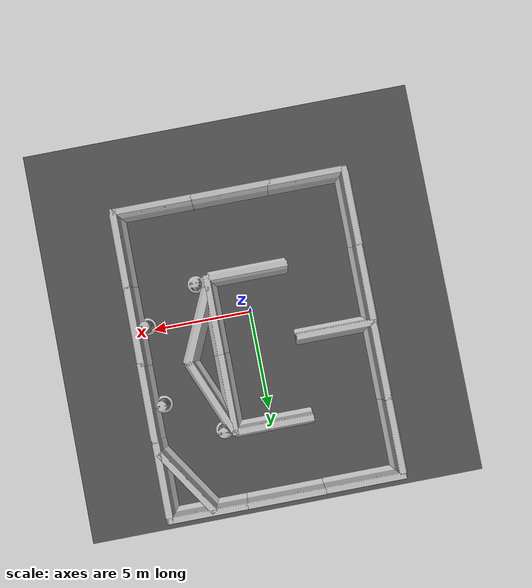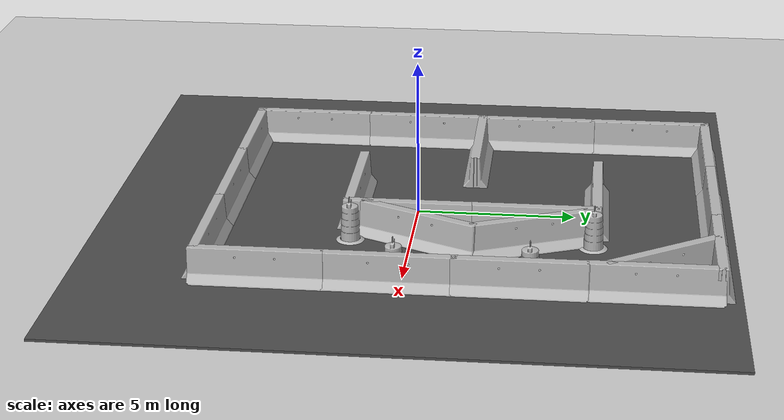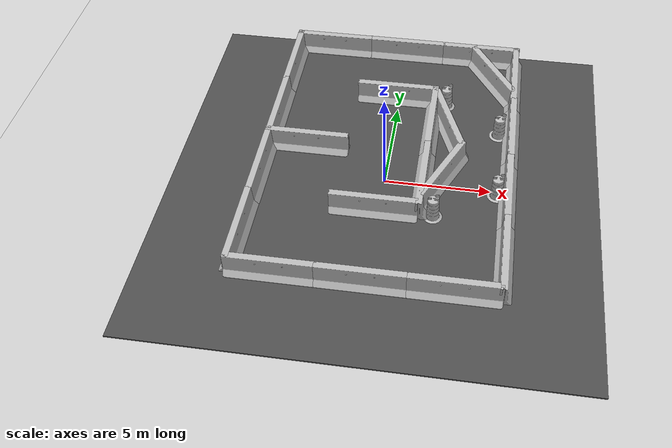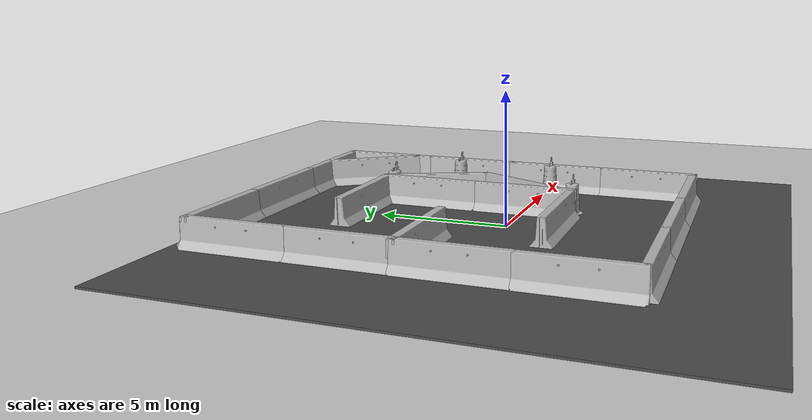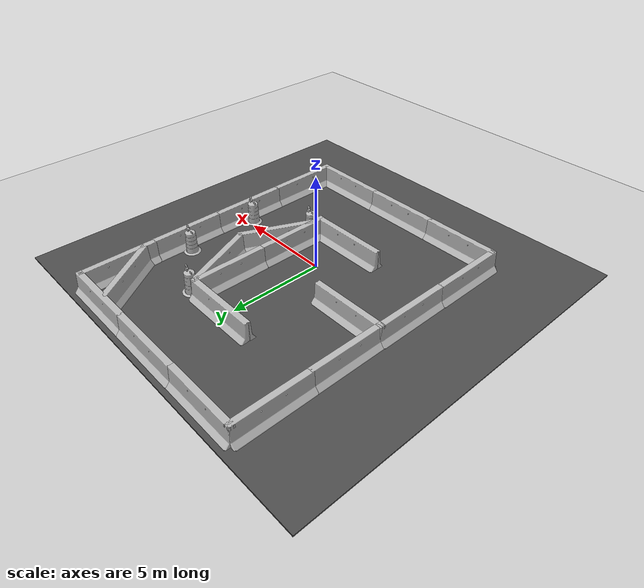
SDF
<sdf version="1.6">
 <world name="default">
  <light name="sun" type="directional">
   <pose>0 0 10 0 -0 0</pose>
   <diffuse>0.8 0.8 0.8 1</diffuse>
   <specular>0.1 0.1 0.1 1</specular>
   <attenuation>
    <range>1000</range>
    <constant>0.9</constant>
    <linear>0.01</linear>
    <quadratic>0.001</quadratic>
   </attenuation>
   <direction>-0.5 0.5 -1</direction>
  </light>
  <model name="ground_plane">
   <static>1</static>
   <link name="link">
    <collision name="collision">
     <geometry><plane><normal>0 0 1</normal><size>100 100</size></plane></geometry>
     <surface><friction><ode><mu>100</mu><mu2>50</mu2></ode></friction></surface>
    </collision>
    <visual name="visual">
     <cast_shadows>0</cast_shadows>
     <geometry><plane><normal>0 0 1</normal><size>100 100</size></plane></geometry>
     <material>
      <script><uri>file://media/materials/scripts/gazebo.material</uri><name>Gazebo/Grey</name></script>
     </material>
    </visual>
   </link>
  </model>
  <gravity>0 0 -9.8</gravity>
  <magnetic_field>6e-06 2.3e-05 -4.2e-05</magnetic_field>
  <atmosphere type="adiabatic"/>
  <physics name="default_physics" default="0" type="ode">
   <max_step_size>0.001</max_step_size>
   <real_time_factor>1</real_time_factor>
   <real_time_update_rate>1000</real_time_update_rate>
  </physics>
  <scene><ambient>0.4 0.4 0.4 1</ambient><background>0.7 0.7 0.7 1</background><shadows>1</shadows></scene>
  <spherical_coordinates>
   <surface_model>EARTH_WGS84</surface_model>
   <latitude_deg>0</latitude_deg>
   <longitude_deg>0</longitude_deg>
   <elevation>0</elevation>
   <heading_deg>0</heading_deg>
  </spherical_coordinates>
  <model name="asphalt_plane">
   <static>1</static>
   <link name="link">
    <collision name="collision"><geometry><box><size>20 20 0.1</size></box></geometry></collision>
    <visual name="visual">
     <cast_shadows>0</cast_shadows>
     <geometry><box><size>20 20 0.1</size></box></geometry>
     <material>
      <script>
       <uri>model://asphalt_plane/materials/scripts</uri>
       <uri>model://asphalt_plane/materials/textures</uri>
       <name>vrc/asphalt</name>
      </script>
     </material>
    </visual>
   </link>
   <pose>-0.024426 0.014227 0 0 -0 0</pose>
  </model>
  <model name="jersey_barrier_1">
   <static>1</static>
   <link name="link">
    <visual name="visual">
     <geometry>
      <mesh><uri>model://jersey_barrier/meshes/jersey_barrier.dae</uri><scale>1 1 1</scale></mesh>
     </geometry>
    </visual>
    <collision name="upright">
     <pose>0 0 0.5715 0 -0 0</pose>
     <geometry><box><size>4.06542 0.3063 1.143</size></box></geometry>
    </collision>
    <collision name="base">
     <pose>0 0 0.032258 0 -0 0</pose>
     <geometry><box><size>4.06542 0.8107 0.064516</size></box></geometry>
    </collision>
    <collision name="base2">
     <pose>0 0 0.1 0 -0 0</pose>
     <geometry><box><size>4.06542 0.65 0.1</size></box></geometry>
    </collision>
    <collision name="base3">
     <pose>0 0 0.2 0 -0 0</pose>
     <geometry><box><size>4.06542 0.5 0.1</size></box></geometry>
    </collision>
    <collision name="left-angle">
     <pose>0 -0.224 0.2401 0.9 -0 0</pose>
     <geometry><box><size>4.06542 0.5 0.064516</size></box></geometry>
    </collision>
    <collision name="right-angle">
     <pose>0 0.224 0.2401 -0.9 0 0</pose>
     <geometry><box><size>4.06542 0.5 0.064516</size></box></geometry>
    </collision>
   </link>
   <pose>-4.01025 1.70091 0 0 -0 0</pose>
  </model>
  <model name="jersey_barrier_1_clone_clone">
   <static>1</static>
   <link name="link">
    <visual name="visual">
     <geometry>
      <mesh><uri>model://jersey_barrier/meshes/jersey_barrier.dae</uri><scale>1 1 1</scale></mesh>
     </geometry>
    </visual>
    <collision name="upright">
     <pose>0 0 0.5715 0 -0 0</pose>
     <geometry><box><size>4.06542 0.3063 1.143</size></box></geometry>
    </collision>
    <collision name="base">
     <pose>0 0 0.032258 0 -0 0</pose>
     <geometry><box><size>4.06542 0.8107 0.064516</size></box></geometry>
    </collision>
    <collision name="base2">
     <pose>0 0 0.1 0 -0 0</pose>
     <geometry><box><size>4.06542 0.65 0.1</size></box></geometry>
    </collision>
    <collision name="base3">
     <pose>0 0 0.2 0 -0 0</pose>
     <geometry><box><size>4.06542 0.5 0.1</size></box></geometry>
    </collision>
    <collision name="left-angle">
     <pose>0 -0.224 0.2401 0.9 -0 0</pose>
     <geometry><box><size>4.06542 0.5 0.064516</size></box></geometry>
    </collision>
    <collision name="right-angle">
     <pose>0 0.224 0.2401 -0.9 0 0</pose>
     <geometry><box><size>4.06542 0.5 0.064516</size></box></geometry>
    </collision>
   </link>
   <pose>-5.88174 -0.237108 0 0 0 -1.57178</pose>
  </model>
  <model name="jersey_barrier_1_clone_clone_0">
   <static>1</static>
   <link name="link">
    <visual name="visual">
     <geometry>
      <mesh><uri>model://jersey_barrier/meshes/jersey_barrier.dae</uri><scale>1 1 1</scale></mesh>
     </geometry>
    </visual>
    <collision name="upright">
     <pose>0 0 0.5715 0 -0 0</pose>
     <geometry><box><size>4.06542 0.3063 1.143</size></box></geometry>
    </collision>
    <collision name="base">
     <pose>0 0 0.032258 0 -0 0</pose>
     <geometry><box><size>4.06542 0.8107 0.064516</size></box></geometry>
    </collision>
    <collision name="base2">
     <pose>0 0 0.1 0 -0 0</pose>
     <geometry><box><size>4.06542 0.65 0.1</size></box></geometry>
    </collision>
    <collision name="base3">
     <pose>0 0 0.2 0 -0 0</pose>
     <geometry><box><size>4.06542 0.5 0.1</size></box></geometry>
    </collision>
    <collision name="left-angle">
     <pose>0 -0.224 0.2401 0.9 -0 0</pose>
     <geometry><box><size>4.06542 0.5 0.064516</size></box></geometry>
    </collision>
    <collision name="right-angle">
     <pose>0 0.224 0.2401 -0.9 0 0</pose>
     <geometry><box><size>4.06542 0.5 0.064516</size></box></geometry>
    </collision>
   </link>
   <pose>-5.90449 -4.19754 0 0 0 -1.57178</pose>
  </model>
  <model name="jersey_barrier_1_clone">
   <static>1</static>
   <link name="link">
    <visual name="visual">
     <geometry>
      <mesh><uri>model://jersey_barrier/meshes/jersey_barrier.dae</uri><scale>1 1 1</scale></mesh>
     </geometry>
    </visual>
    <collision name="upright">
     <pose>0 0 0.5715 0 -0 0</pose>
     <geometry><box><size>4.06542 0.3063 1.143</size></box></geometry>
    </collision>
    <collision name="base">
     <pose>0 0 0.032258 0 -0 0</pose>
     <geometry><box><size>4.06542 0.8107 0.064516</size></box></geometry>
    </collision>
    <collision name="base2">
     <pose>0 0 0.1 0 -0 0</pose>
     <geometry><box><size>4.06542 0.65 0.1</size></box></geometry>
    </collision>
    <collision name="base3">
     <pose>0 0 0.2 0 -0 0</pose>
     <geometry><box><size>4.06542 0.5 0.1</size></box></geometry>
    </collision>
    <collision name="left-angle">
     <pose>0 -0.224 0.2401 0.9 -0 0</pose>
     <geometry><box><size>4.06542 0.5 0.064516</size></box></geometry>
    </collision>
    <collision name="right-angle">
     <pose>0 0.224 0.2401 -0.9 0 0</pose>
     <geometry><box><size>4.06542 0.5 0.064516</size></box></geometry>
    </collision>
   </link>
   <pose>-4.02597 -6.08351 0 0 -0 0</pose>
  </model>
  <model name="jersey_barrier_1_clone_clone_clone">
   <static>1</static>
   <link name="link">
    <visual name="visual">
     <geometry>
      <mesh><uri>model://jersey_barrier/meshes/jersey_barrier.dae</uri><scale>1 1 1</scale></mesh>
     </geometry>
    </visual>
    <collision name="upright">
     <pose>0 0 0.5715 0 -0 0</pose>
     <geometry><box><size>4.06542 0.3063 1.143</size></box></geometry>
    </collision>
    <collision name="base">
     <pose>0 0 0.032258 0 -0 0</pose>
     <geometry><box><size>4.06542 0.8107 0.064516</size></box></geometry>
    </collision>
    <collision name="base2">
     <pose>0 0 0.1 0 -0 0</pose>
     <geometry><box><size>4.06542 0.65 0.1</size></box></geometry>
    </collision>
    <collision name="base3">
     <pose>0 0 0.2 0 -0 0</pose>
     <geometry><box><size>4.06542 0.5 0.1</size></box></geometry>
    </collision>
    <collision name="left-angle">
     <pose>0 -0.224 0.2401 0.9 -0 0</pose>
     <geometry><box><size>4.06542 0.5 0.064516</size></box></geometry>
    </collision>
    <collision name="right-angle">
     <pose>0 0.224 0.2401 -0.9 0 0</pose>
     <geometry><box><size>4.06542 0.5 0.064516</size></box></geometry>
    </collision>
   </link>
   <pose>-5.84903 3.57159 0 0 0 -1.57178</pose>
  </model>
  <model name="jersey_barrier_1_clone_clone_clone_0">
   <static>1</static>
   <link name="link">
    <visual name="visual">
     <geometry>
      <mesh><uri>model://jersey_barrier/meshes/jersey_barrier.dae</uri><scale>1 1 1</scale></mesh>
     </geometry>
    </visual>
    <collision name="upright">
     <pose>0 0 0.5715 0 -0 0</pose>
     <geometry><box><size>4.06542 0.3063 1.143</size></box></geometry>
    </collision>
    <collision name="base">
     <pose>0 0 0.032258 0 -0 0</pose>
     <geometry><box><size>4.06542 0.8107 0.064516</size></box></geometry>
    </collision>
    <collision name="base2">
     <pose>0 0 0.1 0 -0 0</pose>
     <geometry><box><size>4.06542 0.65 0.1</size></box></geometry>
    </collision>
    <collision name="base3">
     <pose>0 0 0.2 0 -0 0</pose>
     <geometry><box><size>4.06542 0.5 0.1</size></box></geometry>
    </collision>
    <collision name="left-angle">
     <pose>0 -0.224 0.2401 0.9 -0 0</pose>
     <geometry><box><size>4.06542 0.5 0.064516</size></box></geometry>
    </collision>
    <collision name="right-angle">
     <pose>0 0.224 0.2401 -0.9 0 0</pose>
     <geometry><box><size>4.06542 0.5 0.064516</size></box></geometry>
    </collision>
   </link>
   <pose>-5.85116 7.4803 0 0 0 -1.57178</pose>
  </model>
  <model name="jersey_barrier_1_clone_clone_1">
   <static>1</static>
   <link name="link">
    <visual name="visual">
     <geometry>
      <mesh><uri>model://jersey_barrier/meshes/jersey_barrier.dae</uri><scale>1 1 1</scale></mesh>
     </geometry>
    </visual>
    <collision name="upright">
     <pose>0 0 0.5715 0 -0 0</pose>
     <geometry><box><size>4.06542 0.3063 1.143</size></box></geometry>
    </collision>
    <collision name="base">
     <pose>0 0 0.032258 0 -0 0</pose>
     <geometry><box><size>4.06542 0.8107 0.064516</size></box></geometry>
    </collision>
    <collision name="base2">
     <pose>0 0 0.1 0 -0 0</pose>
     <geometry><box><size>4.06542 0.65 0.1</size></box></geometry>
    </collision>
    <collision name="base3">
     <pose>0 0 0.2 0 -0 0</pose>
     <geometry><box><size>4.06542 0.5 0.1</size></box></geometry>
    </collision>
    <collision name="left-angle">
     <pose>0 -0.224 0.2401 0.9 -0 0</pose>
     <geometry><box><size>4.06542 0.5 0.064516</size></box></geometry>
    </collision>
    <collision name="right-angle">
     <pose>0 0.224 0.2401 -0.9 0 0</pose>
     <geometry><box><size>4.06542 0.5 0.064516</size></box></geometry>
    </collision>
   </link>
   <pose>-0.142707 -6.08411 0 0 -0 0</pose>
  </model>
  <model name="jersey_barrier_1_clone_clone_2">
   <static>1</static>
   <link name="link">
    <visual name="visual">
     <geometry>
      <mesh><uri>model://jersey_barrier/meshes/jersey_barrier.dae</uri><scale>1 1 1</scale></mesh>
     </geometry>
    </visual>
    <collision name="upright">
     <pose>0 0 0.5715 0 -0 0</pose>
     <geometry><box><size>4.06542 0.3063 1.143</size></box></geometry>
    </collision>
    <collision name="base">
     <pose>0 0 0.032258 0 -0 0</pose>
     <geometry><box><size>4.06542 0.8107 0.064516</size></box></geometry>
    </collision>
    <collision name="base2">
     <pose>0 0 0.1 0 -0 0</pose>
     <geometry><box><size>4.06542 0.65 0.1</size></box></geometry>
    </collision>
    <collision name="base3">
     <pose>0 0 0.2 0 -0 0</pose>
     <geometry><box><size>4.06542 0.5 0.1</size></box></geometry>
    </collision>
    <collision name="left-angle">
     <pose>0 -0.224 0.2401 0.9 -0 0</pose>
     <geometry><box><size>4.06542 0.5 0.064516</size></box></geometry>
    </collision>
    <collision name="right-angle">
     <pose>0 0.224 0.2401 -0.9 0 0</pose>
     <geometry><box><size>4.06542 0.5 0.064516</size></box></geometry>
    </collision>
   </link>
   <pose>3.79624 -6.08803 0 0 -0 0</pose>
  </model>
  <model name="jersey_barrier_1_clone_clone_3">
   <static>1</static>
   <link name="link">
    <visual name="visual">
     <geometry>
      <mesh><uri>model://jersey_barrier/meshes/jersey_barrier.dae</uri><scale>1 1 1</scale></mesh>
     </geometry>
    </visual>
    <collision name="upright">
     <pose>0 0 0.5715 0 -0 0</pose>
     <geometry><box><size>4.06542 0.3063 1.143</size></box></geometry>
    </collision>
    <collision name="base">
     <pose>0 0 0.032258 0 -0 0</pose>
     <geometry><box><size>4.06542 0.8107 0.064516</size></box></geometry>
    </collision>
    <collision name="base2">
     <pose>0 0 0.1 0 -0 0</pose>
     <geometry><box><size>4.06542 0.65 0.1</size></box></geometry>
    </collision>
    <collision name="base3">
     <pose>0 0 0.2 0 -0 0</pose>
     <geometry><box><size>4.06542 0.5 0.1</size></box></geometry>
    </collision>
    <collision name="left-angle">
     <pose>0 -0.224 0.2401 0.9 -0 0</pose>
     <geometry><box><size>4.06542 0.5 0.064516</size></box></geometry>
    </collision>
    <collision name="right-angle">
     <pose>0 0.224 0.2401 -0.9 0 0</pose>
     <geometry><box><size>4.06542 0.5 0.064516</size></box></geometry>
    </collision>
   </link>
   <pose>-3.98039 9.35157 0 0 -0 0</pose>
  </model>
  <model name="jersey_barrier_1_clone_clone_4">
   <static>1</static>
   <link name="link">
    <visual name="visual">
     <geometry>
      <mesh><uri>model://jersey_barrier/meshes/jersey_barrier.dae</uri><scale>1 1 1</scale></mesh>
     </geometry>
    </visual>
    <collision name="upright">
     <pose>0 0 0.5715 0 -0 0</pose>
     <geometry><box><size>4.06542 0.3063 1.143</size></box></geometry>
    </collision>
    <collision name="base">
     <pose>0 0 0.032258 0 -0 0</pose>
     <geometry><box><size>4.06542 0.8107 0.064516</size></box></geometry>
    </collision>
    <collision name="base2">
     <pose>0 0 0.1 0 -0 0</pose>
     <geometry><box><size>4.06542 0.65 0.1</size></box></geometry>
    </collision>
    <collision name="base3">
     <pose>0 0 0.2 0 -0 0</pose>
     <geometry><box><size>4.06542 0.5 0.1</size></box></geometry>
    </collision>
    <collision name="left-angle">
     <pose>0 -0.224 0.2401 0.9 -0 0</pose>
     <geometry><box><size>4.06542 0.5 0.064516</size></box></geometry>
    </collision>
    <collision name="right-angle">
     <pose>0 0.224 0.2401 -0.9 0 0</pose>
     <geometry><box><size>4.06542 0.5 0.064516</size></box></geometry>
    </collision>
   </link>
   <pose>-0.013487 9.36235 0 0 -0 0</pose>
  </model>
  <model name="jersey_barrier_1_clone_clone_5">
   <static>1</static>
   <link name="link">
    <visual name="visual">
     <geometry>
      <mesh><uri>model://jersey_barrier/meshes/jersey_barrier.dae</uri><scale>1 1 1</scale></mesh>
     </geometry>
    </visual>
    <collision name="upright">
     <pose>0 0 0.5715 0 -0 0</pose>
     <geometry><box><size>4.06542 0.3063 1.143</size></box></geometry>
    </collision>
    <collision name="base">
     <pose>0 0 0.032258 0 -0 0</pose>
     <geometry><box><size>4.06542 0.8107 0.064516</size></box></geometry>
    </collision>
    <collision name="base2">
     <pose>0 0 0.1 0 -0 0</pose>
     <geometry><box><size>4.06542 0.65 0.1</size></box></geometry>
    </collision>
    <collision name="base3">
     <pose>0 0 0.2 0 -0 0</pose>
     <geometry><box><size>4.06542 0.5 0.1</size></box></geometry>
    </collision>
    <collision name="left-angle">
     <pose>0 -0.224 0.2401 0.9 -0 0</pose>
     <geometry><box><size>4.06542 0.5 0.064516</size></box></geometry>
    </collision>
    <collision name="right-angle">
     <pose>0 0.224 0.2401 -0.9 0 0</pose>
     <geometry><box><size>4.06542 0.5 0.064516</size></box></geometry>
    </collision>
   </link>
   <pose>3.91234 9.36012 0 0 -0 0</pose>
  </model>
  <model name="jersey_barrier_1_clone_clone_clone_clone">
   <static>1</static>
   <link name="link">
    <visual name="visual">
     <geometry>
      <mesh><uri>model://jersey_barrier/meshes/jersey_barrier.dae</uri><scale>1 1 1</scale></mesh>
     </geometry>
    </visual>
    <collision name="upright">
     <pose>0 0 0.5715 0 -0 0</pose>
     <geometry><box><size>4.06542 0.3063 1.143</size></box></geometry>
    </collision>
    <collision name="base">
     <pose>0 0 0.032258 0 -0 0</pose>
     <geometry><box><size>4.06542 0.8107 0.064516</size></box></geometry>
    </collision>
    <collision name="base2">
     <pose>0 0 0.1 0 -0 0</pose>
     <geometry><box><size>4.06542 0.65 0.1</size></box></geometry>
    </collision>
    <collision name="base3">
     <pose>0 0 0.2 0 -0 0</pose>
     <geometry><box><size>4.06542 0.5 0.1</size></box></geometry>
    </collision>
    <collision name="left-angle">
     <pose>0 -0.224 0.2401 0.9 -0 0</pose>
     <geometry><box><size>4.06542 0.5 0.064516</size></box></geometry>
    </collision>
    <collision name="right-angle">
     <pose>0 0.224 0.2401 -0.9 0 0</pose>
     <geometry><box><size>4.06542 0.5 0.064516</size></box></geometry>
    </collision>
   </link>
   <pose>5.76879 7.46216 0 0 0 -1.57178</pose>
  </model>
  <model name="jersey_barrier_1_clone_clone_clone_clone_0">
   <static>1</static>
   <link name="link">
    <visual name="visual">
     <geometry>
      <mesh><uri>model://jersey_barrier/meshes/jersey_barrier.dae</uri><scale>1 1 1</scale></mesh>
     </geometry>
    </visual>
    <collision name="upright">
     <pose>0 0 0.5715 0 -0 0</pose>
     <geometry><box><size>4.06542 0.3063 1.143</size></box></geometry>
    </collision>
    <collision name="base">
     <pose>0 0 0.032258 0 -0 0</pose>
     <geometry><box><size>4.06542 0.8107 0.064516</size></box></geometry>
    </collision>
    <collision name="base2">
     <pose>0 0 0.1 0 -0 0</pose>
     <geometry><box><size>4.06542 0.65 0.1</size></box></geometry>
    </collision>
    <collision name="base3">
     <pose>0 0 0.2 0 -0 0</pose>
     <geometry><box><size>4.06542 0.5 0.1</size></box></geometry>
    </collision>
    <collision name="left-angle">
     <pose>0 -0.224 0.2401 0.9 -0 0</pose>
     <geometry><box><size>4.06542 0.5 0.064516</size></box></geometry>
    </collision>
    <collision name="right-angle">
     <pose>0 0.224 0.2401 -0.9 0 0</pose>
     <geometry><box><size>4.06542 0.5 0.064516</size></box></geometry>
    </collision>
   </link>
   <pose>5.78124 -4.23478 0 0 0 -1.57178</pose>
  </model>
  <model name="jersey_barrier_1_clone_clone_clone_clone_1">
   <static>1</static>
   <link name="link">
    <visual name="visual">
     <geometry>
      <mesh><uri>model://jersey_barrier/meshes/jersey_barrier.dae</uri><scale>1 1 1</scale></mesh>
     </geometry>
    </visual>
    <collision name="upright">
     <pose>0 0 0.5715 0 -0 0</pose>
     <geometry><box><size>4.06542 0.3063 1.143</size></box></geometry>
    </collision>
    <collision name="base">
     <pose>0 0 0.032258 0 -0 0</pose>
     <geometry><box><size>4.06542 0.8107 0.064516</size></box></geometry>
    </collision>
    <collision name="base2">
     <pose>0 0 0.1 0 -0 0</pose>
     <geometry><box><size>4.06542 0.65 0.1</size></box></geometry>
    </collision>
    <collision name="base3">
     <pose>0 0 0.2 0 -0 0</pose>
     <geometry><box><size>4.06542 0.5 0.1</size></box></geometry>
    </collision>
    <collision name="left-angle">
     <pose>0 -0.224 0.2401 0.9 -0 0</pose>
     <geometry><box><size>4.06542 0.5 0.064516</size></box></geometry>
    </collision>
    <collision name="right-angle">
     <pose>0 0.224 0.2401 -0.9 0 0</pose>
     <geometry><box><size>4.06542 0.5 0.064516</size></box></geometry>
    </collision>
   </link>
   <pose>5.77687 -0.307619 0 0 0 -1.57178</pose>
  </model>
  <model name="jersey_barrier_1_clone_clone_clone_clone_2">
   <static>1</static>
   <link name="link">
    <visual name="visual">
     <geometry>
      <mesh><uri>model://jersey_barrier/meshes/jersey_barrier.dae</uri><scale>1 1 1</scale></mesh>
     </geometry>
    </visual>
    <collision name="upright">
     <pose>0 0 0.5715 0 -0 0</pose>
     <geometry><box><size>4.06542 0.3063 1.143</size></box></geometry>
    </collision>
    <collision name="base">
     <pose>0 0 0.032258 0 -0 0</pose>
     <geometry><box><size>4.06542 0.8107 0.064516</size></box></geometry>
    </collision>
    <collision name="base2">
     <pose>0 0 0.1 0 -0 0</pose>
     <geometry><box><size>4.06542 0.65 0.1</size></box></geometry>
    </collision>
    <collision name="base3">
     <pose>0 0 0.2 0 -0 0</pose>
     <geometry><box><size>4.06542 0.5 0.1</size></box></geometry>
    </collision>
    <collision name="left-angle">
     <pose>0 -0.224 0.2401 0.9 -0 0</pose>
     <geometry><box><size>4.06542 0.5 0.064516</size></box></geometry>
    </collision>
    <collision name="right-angle">
     <pose>0 0.224 0.2401 -0.9 0 0</pose>
     <geometry><box><size>4.06542 0.5 0.064516</size></box></geometry>
    </collision>
   </link>
   <pose>5.79035 3.51554 0 0 0 -1.57178</pose>
  </model>
  <model name="jersey_barrier_1_clone_0">
   <static>1</static>
   <link name="link">
    <visual name="visual">
     <geometry>
      <mesh><uri>model://jersey_barrier/meshes/jersey_barrier.dae</uri><scale>1 1 1</scale></mesh>
     </geometry>
    </visual>
    <collision name="upright">
     <pose>0 0 0.5715 0 -0 0</pose>
     <geometry><box><size>4.06542 0.3063 1.143</size></box></geometry>
    </collision>
    <collision name="base">
     <pose>0 0 0.032258 0 -0 0</pose>
     <geometry><box><size>4.06542 0.8107 0.064516</size></box></geometry>
    </collision>
    <collision name="base2">
     <pose>0 0 0.1 0 -0 0</pose>
     <geometry><box><size>4.06542 0.65 0.1</size></box></geometry>
    </collision>
    <collision name="base3">
     <pose>0 0 0.2 0 -0 0</pose>
     <geometry><box><size>4.06542 0.5 0.1</size></box></geometry>
    </collision>
    <collision name="left-angle">
     <pose>0 -0.224 0.2401 0.9 -0 0</pose>
     <geometry><box><size>4.06542 0.5 0.064516</size></box></geometry>
    </collision>
    <collision name="right-angle">
     <pose>0 0.224 0.2401 -0.9 0 0</pose>
     <geometry><box><size>4.06542 0.5 0.064516</size></box></geometry>
    </collision>
   </link>
   <pose>-0.225862 -1.98837 0 0 -0 0</pose>
  </model>
  <model name="jersey_barrier_1_clone_clone_clone_clone_1_clone">
   <static>1</static>
   <link name="link">
    <visual name="visual">
     <geometry>
      <mesh><uri>model://jersey_barrier/meshes/jersey_barrier.dae</uri><scale>1 1 1</scale></mesh>
     </geometry>
    </visual>
    <collision name="upright">
     <pose>0 0 0.5715 0 -0 0</pose>
     <geometry><box><size>4.06542 0.3063 1.143</size></box></geometry>
    </collision>
    <collision name="base">
     <pose>0 0 0.032258 0 -0 0</pose>
     <geometry><box><size>4.06542 0.8107 0.064516</size></box></geometry>
    </collision>
    <collision name="base2">
     <pose>0 0 0.1 0 -0 0</pose>
     <geometry><box><size>4.06542 0.65 0.1</size></box></geometry>
    </collision>
    <collision name="base3">
     <pose>0 0 0.2 0 -0 0</pose>
     <geometry><box><size>4.06542 0.5 0.1</size></box></geometry>
    </collision>
    <collision name="left-angle">
     <pose>0 -0.224 0.2401 0.9 -0 0</pose>
     <geometry><box><size>4.06542 0.5 0.064516</size></box></geometry>
    </collision>
    <collision name="right-angle">
     <pose>0 0.224 0.2401 -0.9 0 0</pose>
     <geometry><box><size>4.06542 0.5 0.064516</size></box></geometry>
    </collision>
   </link>
   <pose>1.83118 -0.142379 0 0 0 -1.57178</pose>
  </model>
  <model name="jersey_barrier_1_clone_clone_clone_clone_1_clone_0">
   <static>1</static>
   <link name="link">
    <visual name="visual">
     <geometry>
      <mesh><uri>model://jersey_barrier/meshes/jersey_barrier.dae</uri><scale>1 1 1</scale></mesh>
     </geometry>
    </visual>
    <collision name="upright">
     <pose>0 0 0.5715 0 -0 0</pose>
     <geometry><box><size>4.06542 0.3063 1.143</size></box></geometry>
    </collision>
    <collision name="base">
     <pose>0 0 0.032258 0 -0 0</pose>
     <geometry><box><size>4.06542 0.8107 0.064516</size></box></geometry>
    </collision>
    <collision name="base2">
     <pose>0 0 0.1 0 -0 0</pose>
     <geometry><box><size>4.06542 0.65 0.1</size></box></geometry>
    </collision>
    <collision name="base3">
     <pose>0 0 0.2 0 -0 0</pose>
     <geometry><box><size>4.06542 0.5 0.1</size></box></geometry>
    </collision>
    <collision name="left-angle">
     <pose>0 -0.224 0.2401 0.9 -0 0</pose>
     <geometry><box><size>4.06542 0.5 0.064516</size></box></geometry>
    </collision>
    <collision name="right-angle">
     <pose>0 0.224 0.2401 -0.9 0 0</pose>
     <geometry><box><size>4.06542 0.5 0.064516</size></box></geometry>
    </collision>
   </link>
   <pose>1.82983 3.84553 0 0 0 -1.57178</pose>
  </model>
  <model name="jersey_barrier_1_clone_0_clone">
   <static>1</static>
   <link name="link">
    <visual name="visual">
     <geometry>
      <mesh><uri>model://jersey_barrier/meshes/jersey_barrier.dae</uri><scale>1 1 1</scale></mesh>
     </geometry>
    </visual>
    <collision name="upright">
     <pose>0 0 0.5715 0 -0 0</pose>
     <geometry><box><size>4.06542 0.3063 1.143</size></box></geometry>
    </collision>
    <collision name="base">
     <pose>0 0 0.032258 0 -0 0</pose>
     <geometry><box><size>4.06542 0.8107 0.064516</size></box></geometry>
    </collision>
    <collision name="base2">
     <pose>0 0 0.1 0 -0 0</pose>
     <geometry><box><size>4.06542 0.65 0.1</size></box></geometry>
    </collision>
    <collision name="base3">
     <pose>0 0 0.2 0 -0 0</pose>
     <geometry><box><size>4.06542 0.5 0.1</size></box></geometry>
    </collision>
    <collision name="left-angle">
     <pose>0 -0.224 0.2401 0.9 -0 0</pose>
     <geometry><box><size>4.06542 0.5 0.064516</size></box></geometry>
    </collision>
    <collision name="right-angle">
     <pose>0 0.224 0.2401 -0.9 0 0</pose>
     <geometry><box><size>4.06542 0.5 0.064516</size></box></geometry>
    </collision>
   </link>
   <pose>-0.08575 5.72462 0 0 -0 0</pose>
  </model>
  <model name="Construction Barrel">
   <static>1</static>
   <link name="link">
    <inertial>
     <pose>0 0 0.4 0 -0 0</pose>
     <mass>500</mass>
     <inertia><ixx>51.2096</ixx><iyy>51.2096</iyy><izz>25</izz><ixy>0</ixy><ixz>0</ixz><iyz>0</iyz></inertia>
    </inertial>
    <collision name="collision">
     <geometry>
      <mesh><uri>model://construction_barrel/meshes/construction_barrel.dae</uri><scale>1 1 1</scale></mesh>
     </geometry>
    </collision>
    <visual name="visual">
     <geometry>
      <mesh><uri>model://construction_barrel/meshes/construction_barrel.dae</uri><scale>1 1 1</scale></mesh>
     </geometry>
    </visual>
   </link>
   <pose>2.46121 -1.87481 0 0 -0 0</pose>
  </model>
  <model name="Construction Barrel_clone">
   <static>1</static>
   <link name="link">
    <inertial>
     <pose>0 0 0.4 0 -0 0</pose>
     <mass>500</mass>
     <inertia><ixx>51.2096</ixx><iyy>51.2096</iyy><izz>25</izz><ixy>0</ixy><ixz>0</ixz><iyz>0</iyz></inertia>
    </inertial>
    <collision name="collision">
     <geometry>
      <mesh><uri>model://construction_barrel/meshes/construction_barrel.dae</uri><scale>1 1 1</scale></mesh>
     </geometry>
    </collision>
    <visual name="visual">
     <geometry>
      <mesh><uri>model://construction_barrel/meshes/construction_barrel.dae</uri><scale>1 1 1</scale></mesh>
     </geometry>
    </visual>
   </link>
   <pose>2.41179 5.64136 0 0 -0 0</pose>
  </model>
  <model name="Construction Barrel_clone_0">
   <static>1</static>
   <link name="link">
    <inertial>
     <pose>0 0 0.4 0 -0 0</pose>
     <mass>500</mass>
     <inertia><ixx>51.2096</ixx><iyy>51.2096</iyy><izz>25</izz><ixy>0</ixy><ixz>0</ixz><iyz>0</iyz></inertia>
    </inertial>
    <collision name="collision">
     <geometry>
      <mesh><uri>model://construction_barrel/meshes/construction_barrel.dae</uri><scale>1 1 1</scale></mesh>
     </geometry>
    </collision>
    <visual name="visual">
     <geometry>
      <mesh><uri>model://construction_barrel/meshes/construction_barrel.dae</uri><scale>1 1 1</scale></mesh>
     </geometry>
    </visual>
   </link>
   <pose>5.1658 3.79456 0 0 -0 0</pose>
  </model>
  <model name="Construction Barrel_clone_1">
   <static>1</static>
   <link name="link">
    <inertial>
     <pose>0 0 0.4 0 -0 0</pose>
     <mass>500</mass>
     <inertia><ixx>51.2096</ixx><iyy>51.2096</iyy><izz>25</izz><ixy>0</ixy><ixz>0</ixz><iyz>0</iyz></inertia>
    </inertial>
    <collision name="collision">
     <geometry>
      <mesh><uri>model://construction_barrel/meshes/construction_barrel.dae</uri><scale>1 1 1</scale></mesh>
     </geometry>
    </collision>
    <visual name="visual">
     <geometry>
      <mesh><uri>model://construction_barrel/meshes/construction_barrel.dae</uri><scale>1 1 1</scale></mesh>
     </geometry>
    </visual>
   </link>
   <pose>5.2686 -0.223361 0 0 -0 0</pose>
  </model>
  <model name="jersey_barrier_1_clone_clone_clone_clone_1_clone_clone">
   <static>1</static>
   <link name="link">
    <visual name="visual">
     <geometry>
      <mesh><uri>model://jersey_barrier/meshes/jersey_barrier.dae</uri><scale>1 1 1</scale></mesh>
     </geometry>
    </visual>
    <collision name="upright">
     <pose>0 0 0.5715 0 -0 0</pose>
     <geometry><box><size>4.06542 0.3063 1.143</size></box></geometry>
    </collision>
    <collision name="base">
     <pose>0 0 0.032258 0 -0 0</pose>
     <geometry><box><size>4.06542 0.8107 0.064516</size></box></geometry>
    </collision>
    <collision name="base2">
     <pose>0 0 0.1 0 -0 0</pose>
     <geometry><box><size>4.06542 0.65 0.1</size></box></geometry>
    </collision>
    <collision name="base3">
     <pose>0 0 0.2 0 -0 0</pose>
     <geometry><box><size>4.06542 0.5 0.1</size></box></geometry>
    </collision>
    <collision name="left-angle">
     <pose>0 -0.224 0.2401 0.9 -0 0</pose>
     <geometry><box><size>4.06542 0.5 0.064516</size></box></geometry>
    </collision>
    <collision name="right-angle">
     <pose>0 0.224 0.2401 -0.9 0 0</pose>
     <geometry><box><size>4.06542 0.5 0.064516</size></box></geometry>
    </collision>
   </link>
   <pose>2.66004 0.245352 0 0 0 -1.99586</pose>
  </model>
  <model name="jersey_barrier_1_clone_clone_clone_clone_clone">
   <static>1</static>
   <link name="link">
    <visual name="visual">
     <geometry>
      <mesh><uri>model://jersey_barrier/meshes/jersey_barrier.dae</uri><scale>1 1 1</scale></mesh>
     </geometry>
    </visual>
    <collision name="upright">
     <pose>0 0 0.5715 0 -0 0</pose>
     <geometry><box><size>4.06542 0.3063 1.143</size></box></geometry>
    </collision>
    <collision name="base">
     <pose>0 0 0.032258 0 -0 0</pose>
     <geometry><box><size>4.06542 0.8107 0.064516</size></box></geometry>
    </collision>
    <collision name="base2">
     <pose>0 0 0.1 0 -0 0</pose>
     <geometry><box><size>4.06542 0.65 0.1</size></box></geometry>
    </collision>
    <collision name="base3">
     <pose>0 0 0.2 0 -0 0</pose>
     <geometry><box><size>4.06542 0.5 0.1</size></box></geometry>
    </collision>
    <collision name="left-angle">
     <pose>0 -0.224 0.2401 0.9 -0 0</pose>
     <geometry><box><size>4.06542 0.5 0.064516</size></box></geometry>
    </collision>
    <collision name="right-angle">
     <pose>0 0.224 0.2401 -0.9 0 0</pose>
     <geometry><box><size>4.06542 0.5 0.064516</size></box></geometry>
    </collision>
   </link>
   <pose>4.65092 7.68844 0 0 0 -0.984555</pose>
  </model>
  <audio><device>default</device></audio>
  <model name="jersey_barrier_1_clone_clone_clone_clone_clone_clone">
   <static>1</static>
   <link name="link">
    <visual name="visual">
     <geometry>
      <mesh><uri>model://jersey_barrier/meshes/jersey_barrier.dae</uri><scale>1 1 1</scale></mesh>
     </geometry>
    </visual>
    <collision name="upright">
     <pose>0 0 0.5715 0 -0 0</pose>
     <geometry><box><size>4.06542 0.3063 1.143</size></box></geometry>
    </collision>
    <collision name="base">
     <pose>0 0 0.032258 0 -0 0</pose>
     <geometry><box><size>4.06542 0.8107 0.064516</size></box></geometry>
    </collision>
    <collision name="base2">
     <pose>0 0 0.1 0 -0 0</pose>
     <geometry><box><size>4.06542 0.65 0.1</size></box></geometry>
    </collision>
    <collision name="base3">
     <pose>0 0 0.2 0 -0 0</pose>
     <geometry><box><size>4.06542 0.5 0.1</size></box></geometry>
    </collision>
    <collision name="left-angle">
     <pose>0 -0.224 0.2401 0.9 -0 0</pose>
     <geometry><box><size>4.06542 0.5 0.064516</size></box></geometry>
    </collision>
    <collision name="right-angle">
     <pose>0 0.224 0.2401 -0.9 0 0</pose>
     <geometry><box><size>4.06542 0.5 0.064516</size></box></geometry>
    </collision>
   </link>
   <pose>2.67879 3.76741 0 0 0 -1.18026</pose>
  </model>
 </world>
</sdf>
